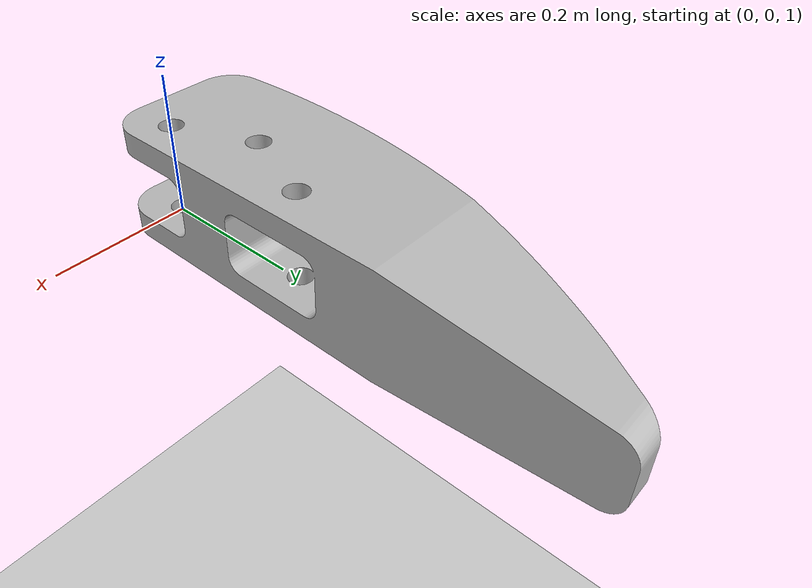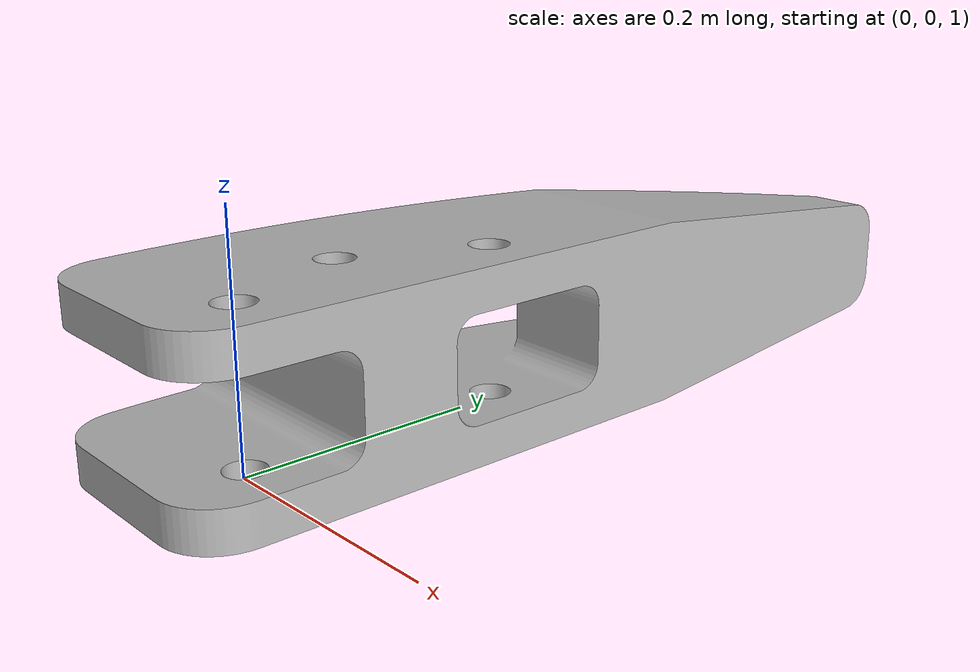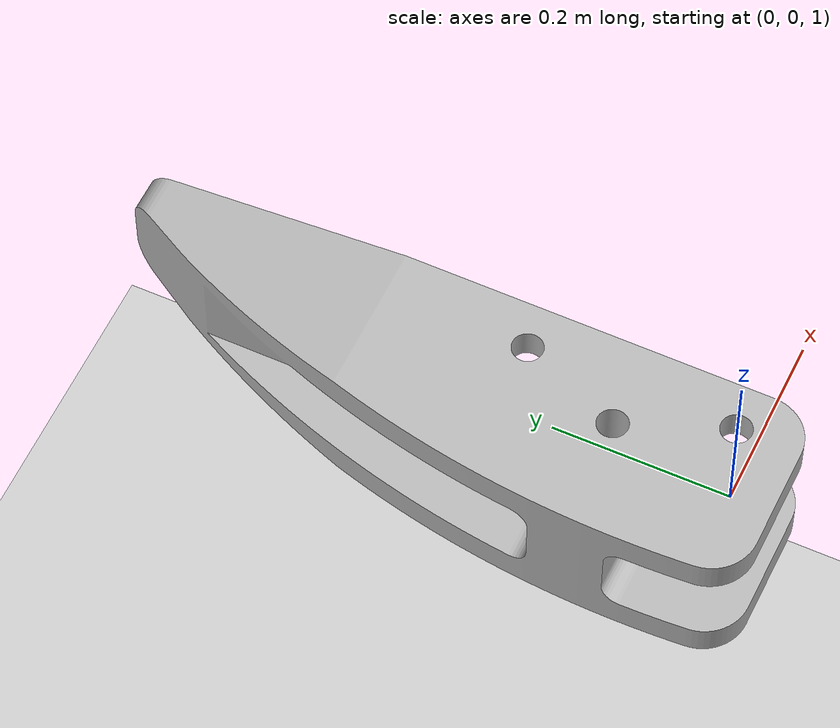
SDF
<?xml version="1.0"?>
<sdf version="1.4">
  <world name="empty_world">
    <include>
      <uri>model://ground_plane</uri>
    </include>
    <include>
      <uri>model://sun</uri>
    </include>
    <model name="leg1">
      <pose>0 0 1.05 -1.57079632679 0 0</pose>
      <static>true</static>
      <link name="leg1">
        <visual name="visual">
          <geometry>
            <mesh>
             <scale>0.02 0.02 0.02</scale>
             <uri>/home/david/Development_david/repos/Discovering/ROS/xpider_ws/src/xpider_descriptions/meshes/leg.stl</uri>
            </mesh>
          </geometry>
        </visual>
      </link>
    </model>

    <model name="leg2">
      <pose>0 0 1.05 -1.57079632679 0 0</pose>
      <static>true</static>
      <link name="leg2">
        <visual name="visual">
          <geometry>
            <mesh>
             <scale>0.02 0.02 0.02</scale>
             <uri>/home/david/Development_david/repos/Discovering/ROS/xpider_ws/src/xpider_descriptions/meshes/leg.stl</uri>
            </mesh>
          </geometry>
        </visual>
      </link>
    </model>
  </world>
</sdf>
